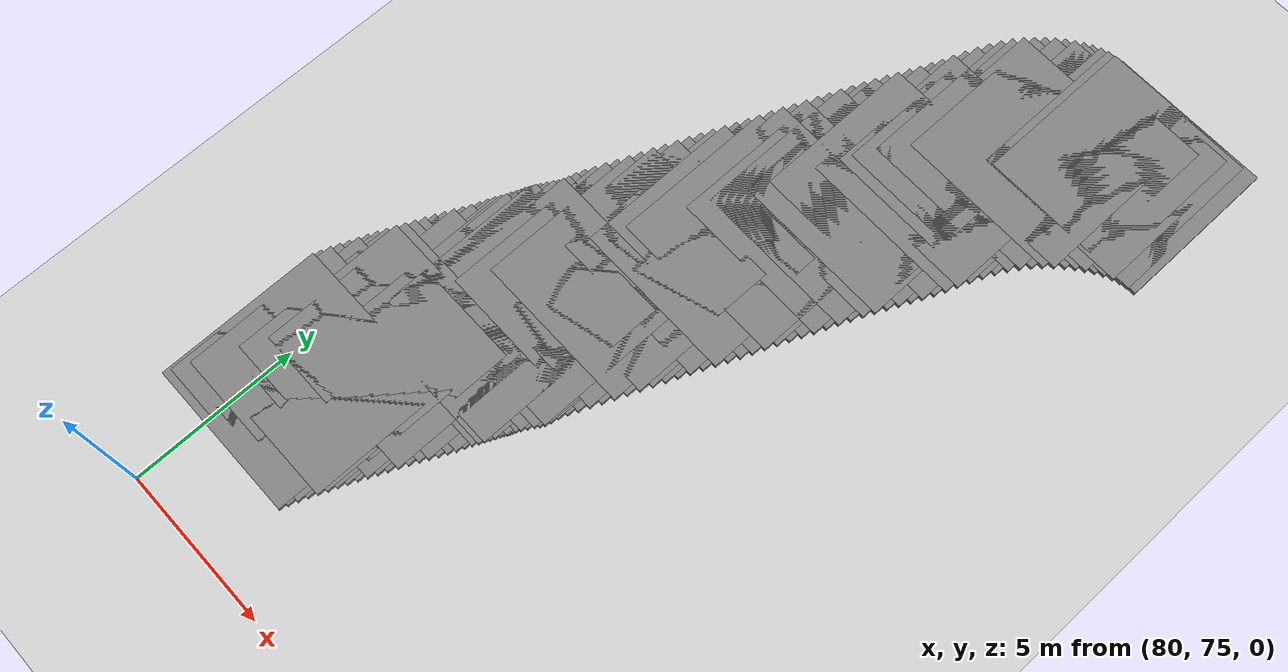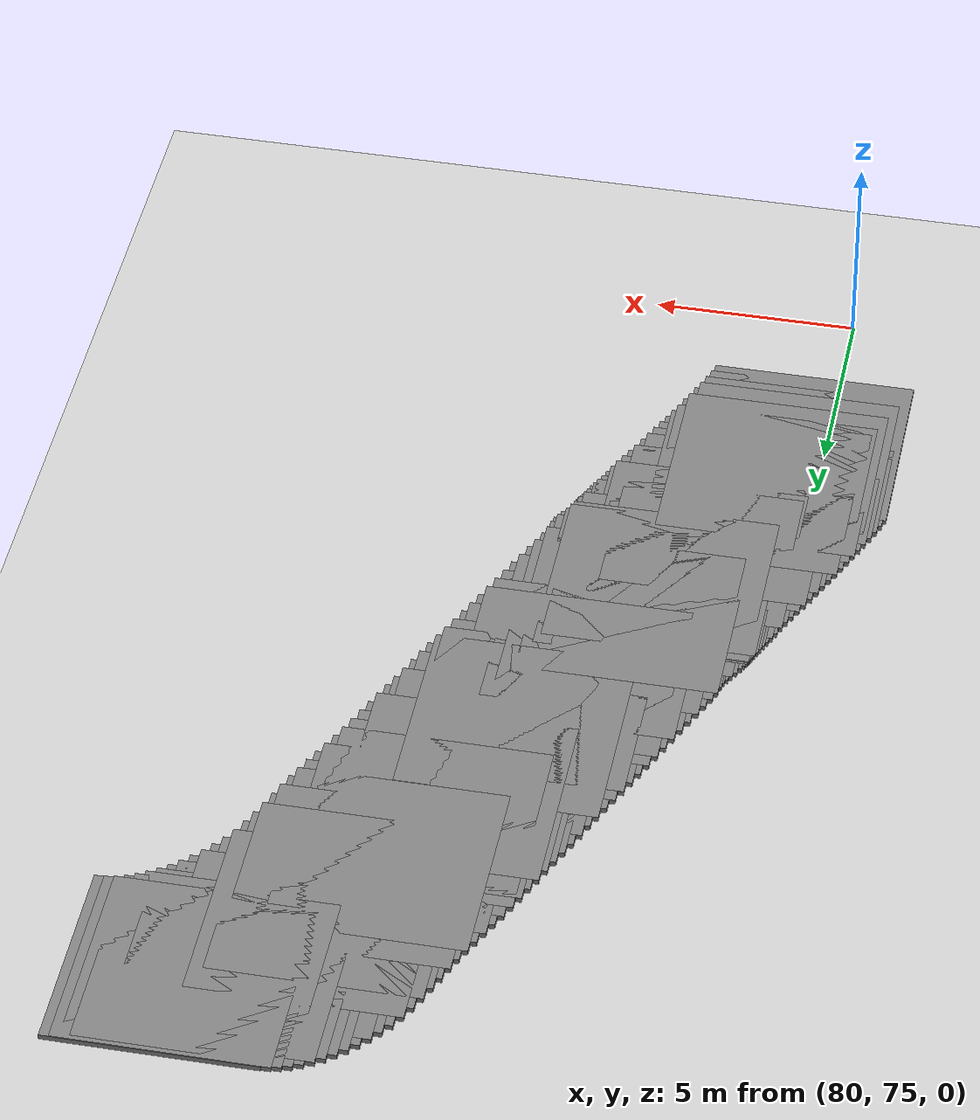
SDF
<sdf version="1.6">
 <world name="default">
  <include><uri>model://sun</uri></include>
  <include><uri>model://ground_plane</uri></include>
  <model name="road_segment_90">
   <static>true</static>
   <link name="link">
    <visual name="visual">
     <geometry><box><size>5.0 5.0 0.2</size></box></geometry>
     <material><ambient>0.5 0.5 0.5 1</ambient><diffuse>0.5 0.5 0.5 1</diffuse></material>
     <pose>91.52750333164111 100.0 0.0 0 0 0</pose>
    </visual>
    <collision name="collision">
     <geometry><box><size>5.0 5.0 0.2</size></box></geometry>
     <pose>91.52750333164111 100.0 0.0 0 0 0</pose>
    </collision>
   </link>
  </model>
  <model name="road_segment_91">
   <static>true</static>
   <link name="link">
    <visual name="visual">
     <geometry><box><size>5.0 5.0 0.2</size></box></geometry>
     <material><ambient>0.5 0.5 0.5 1</ambient><diffuse>0.5 0.5 0.5 1</diffuse></material>
     <pose>91.30393823810849 99.98161314047123 0.0 0 0 0</pose>
    </visual>
    <collision name="collision">
     <geometry><box><size>5.0 5.0 0.2</size></box></geometry>
     <pose>91.30393823810849 99.98161314047123 0.0 0 0 0</pose>
    </collision>
   </link>
  </model>
  <model name="road_segment_92">
   <static>true</static>
   <link name="link">
    <visual name="visual">
     <geometry><box><size>5.0 5.0 0.2</size></box></geometry>
     <material><ambient>0.5 0.5 0.5 1</ambient><diffuse>0.5 0.5 0.5 1</diffuse></material>
     <pose>91.07922430034874 99.94075345264079 0.0 0 0 0</pose>
    </visual>
    <collision name="collision">
     <geometry><box><size>5.0 5.0 0.2</size></box></geometry>
     <pose>91.07922430034874 99.94075345264079 0.0 0 0 0</pose>
    </collision>
   </link>
  </model>
  <model name="road_segment_93">
   <static>true</static>
   <link name="link">
    <visual name="visual">
     <geometry><box><size>5.0 5.0 0.2</size></box></geometry>
     <material><ambient>0.5 0.5 0.5 1</ambient><diffuse>0.5 0.5 0.5 1</diffuse></material>
     <pose>90.85474013142787 99.8712919833276 0.0 0 0 0</pose>
    </visual>
    <collision name="collision">
     <geometry><box><size>5.0 5.0 0.2</size></box></geometry>
     <pose>90.85474013142787 99.8712919833276 0.0 0 0 0</pose>
    </collision>
   </link>
  </model>
  <model name="road_segment_94">
   <static>true</static>
   <link name="link">
    <visual name="visual">
     <geometry><box><size>5.0 5.0 0.2</size></box></geometry>
     <material><ambient>0.5 0.5 0.5 1</ambient><diffuse>0.5 0.5 0.5 1</diffuse></material>
     <pose>90.63094526905635 99.76995995750318 0.0 0 0 0</pose>
    </visual>
    <collision name="collision">
     <geometry><box><size>5.0 5.0 0.2</size></box></geometry>
     <pose>90.63094526905635 99.76995995750318 0.0 0 0 0</pose>
    </collision>
   </link>
  </model>
  <model name="road_segment_95">
   <static>true</static>
   <link name="link">
    <visual name="visual">
     <geometry><box><size>5.0 5.0 0.2</size></box></geometry>
     <material><ambient>0.5 0.5 0.5 1</ambient><diffuse>0.5 0.5 0.5 1</diffuse></material>
     <pose>90.41174578372392 99.64697229712878 0.0 0 0 0</pose>
    </visual>
    <collision name="collision">
     <geometry><box><size>5.0 5.0 0.2</size></box></geometry>
     <pose>90.41174578372392 99.64697229712878 0.0 0 0 0</pose>
    </collision>
   </link>
  </model>
  <model name="road_segment_96">
   <static>true</static>
   <link name="link">
    <visual name="visual">
     <geometry><box><size>5.0 5.0 0.2</size></box></geometry>
     <material><ambient>0.5 0.5 0.5 1</ambient><diffuse>0.5 0.5 0.5 1</diffuse></material>
     <pose>90.19185699184214 99.50723216474347 0.0 0 0 0</pose>
    </visual>
    <collision name="collision">
     <geometry><box><size>5.0 5.0 0.2</size></box></geometry>
     <pose>90.19185699184214 99.50723216474347 0.0 0 0 0</pose>
    </collision>
   </link>
  </model>
  <model name="road_segment_97">
   <static>true</static>
   <link name="link">
    <visual name="visual">
     <geometry><box><size>5.0 5.0 0.2</size></box></geometry>
     <material><ambient>0.5 0.5 0.5 1</ambient><diffuse>0.5 0.5 0.5 1</diffuse></material>
     <pose>89.97449565735145 99.35073956034724 0.0 0 0 0</pose>
    </visual>
    <collision name="collision">
     <geometry><box><size>5.0 5.0 0.2</size></box></geometry>
     <pose>89.97449565735145 99.35073956034724 0.0 0 0 0</pose>
    </collision>
   </link>
  </model>
  <model name="road_segment_98">
   <static>true</static>
   <link name="link">
    <visual name="visual">
     <geometry><box><size>5.0 5.0 0.2</size></box></geometry>
     <material><ambient>0.5 0.5 0.5 1</ambient><diffuse>0.5 0.5 0.5 1</diffuse></material>
     <pose>89.76104039335053 99.17013974013148 0.0 0 0 0</pose>
    </visual>
    <collision name="collision">
     <geometry><box><size>5.0 5.0 0.2</size></box></geometry>
     <pose>89.76104039335053 99.17013974013148 0.0 0 0 0</pose>
    </collision>
   </link>
  </model>
  <model name="road_segment_99">
   <static>true</static>
   <link name="link">
    <visual name="visual">
     <geometry><box><size>5.0 5.0 0.2</size></box></geometry>
     <material><ambient>0.5 0.5 0.5 1</ambient><diffuse>0.5 0.5 0.5 1</diffuse></material>
     <pose>89.5510316621289 98.96870147911741 0.0 0 0 0</pose>
    </visual>
    <collision name="collision">
     <geometry><box><size>5.0 5.0 0.2</size></box></geometry>
     <pose>89.5510316621289 98.96870147911741 0.0 0 0 0</pose>
    </collision>
   </link>
  </model>
  <model name="road_segment_100">
   <static>true</static>
   <link name="link">
    <visual name="visual">
     <geometry><box><size>5.0 5.0 0.2</size></box></geometry>
     <material><ambient>0.5 0.5 0.5 1</ambient><diffuse>0.5 0.5 0.5 1</diffuse></material>
     <pose>89.34309085058793 98.75091934297554 0.0 0 0 0</pose>
    </visual>
    <collision name="collision">
     <geometry><box><size>5.0 5.0 0.2</size></box></geometry>
     <pose>89.34309085058793 98.75091934297554 0.0 0 0 0</pose>
    </collision>
   </link>
  </model>
  <model name="road_segment_101">
   <static>true</static>
   <link name="link">
    <visual name="visual">
     <geometry><box><size>5.0 5.0 0.2</size></box></geometry>
     <material><ambient>0.5 0.5 0.5 1</ambient><diffuse>0.5 0.5 0.5 1</diffuse></material>
     <pose>89.14709801938776 98.51679333169857 0.0 0 0 0</pose>
    </visual>
    <collision name="collision">
     <geometry><box><size>5.0 5.0 0.2</size></box></geometry>
     <pose>89.14709801938776 98.51679333169857 0.0 0 0 0</pose>
    </collision>
   </link>
  </model>
  <model name="road_segment_102">
   <static>true</static>
   <link name="link">
    <visual name="visual">
     <geometry><box><size>5.0 5.0 0.2</size></box></geometry>
     <material><ambient>0.5 0.5 0.5 1</ambient><diffuse>0.5 0.5 0.5 1</diffuse></material>
     <pose>88.95455172096689 98.26060308898853 0.0 0 0 0</pose>
    </visual>
    <collision name="collision">
     <geometry><box><size>5.0 5.0 0.2</size></box></geometry>
     <pose>88.95455172096689 98.26060308898853 0.0 0 0 0</pose>
    </collision>
   </link>
  </model>
  <model name="road_segment_103">
   <static>true</static>
   <link name="link">
    <visual name="visual">
     <geometry><box><size>5.0 5.0 0.2</size></box></geometry>
     <material><ambient>0.5 0.5 0.5 1</ambient><diffuse>0.5 0.5 0.5 1</diffuse></material>
     <pose>88.77487247827506 97.97540246791989 0.0 0 0 0</pose>
    </visual>
    <collision name="collision">
     <geometry><box><size>5.0 5.0 0.2</size></box></geometry>
     <pose>88.77487247827506 97.97540246791989 0.0 0 0 0</pose>
    </collision>
   </link>
  </model>
  <model name="road_segment_104">
   <static>true</static>
   <link name="link">
    <visual name="visual">
     <geometry><box><size>5.0 5.0 0.2</size></box></geometry>
     <material><ambient>0.5 0.5 0.5 1</ambient><diffuse>0.5 0.5 0.5 1</diffuse></material>
     <pose>88.61380451264375 97.66323445288636 0.0 0 0 0</pose>
    </visual>
    <collision name="collision">
     <geometry><box><size>5.0 5.0 0.2</size></box></geometry>
     <pose>88.61380451264375 97.66323445288636 0.0 0 0 0</pose>
    </collision>
   </link>
  </model>
  <model name="road_segment_105">
   <static>true</static>
   <link name="link">
    <visual name="visual">
     <geometry><box><size>5.0 5.0 0.2</size></box></geometry>
     <material><ambient>0.5 0.5 0.5 1</ambient><diffuse>0.5 0.5 0.5 1</diffuse></material>
     <pose>88.46330591425459 97.33472256271776 0.0 0 0 0</pose>
    </visual>
    <collision name="collision">
     <geometry><box><size>5.0 5.0 0.2</size></box></geometry>
     <pose>88.46330591425459 97.33472256271776 0.0 0 0 0</pose>
    </collision>
   </link>
  </model>
  <model name="road_segment_106">
   <static>true</static>
   <link name="link">
    <visual name="visual">
     <geometry><box><size>5.0 5.0 0.2</size></box></geometry>
     <material><ambient>0.5 0.5 0.5 1</ambient><diffuse>0.5 0.5 0.5 1</diffuse></material>
     <pose>88.31855153713163 97.0000817193753 0.0 0 0 0</pose>
    </visual>
    <collision name="collision">
     <geometry><box><size>5.0 5.0 0.2</size></box></geometry>
     <pose>88.31855153713163 97.0000817193753 0.0 0 0 0</pose>
    </collision>
   </link>
  </model>
  <model name="road_segment_107">
   <static>true</static>
   <link name="link">
    <visual name="visual">
     <geometry><box><size>5.0 5.0 0.2</size></box></geometry>
     <material><ambient>0.5 0.5 0.5 1</ambient><diffuse>0.5 0.5 0.5 1</diffuse></material>
     <pose>88.18505583383278 96.66298929475607 0.0 0 0 0</pose>
    </visual>
    <collision name="collision">
     <geometry><box><size>5.0 5.0 0.2</size></box></geometry>
     <pose>88.18505583383278 96.66298929475607 0.0 0 0 0</pose>
    </collision>
   </link>
  </model>
  <model name="road_segment_108">
   <static>true</static>
   <link name="link">
    <visual name="visual">
     <geometry><box><size>5.0 5.0 0.2</size></box></geometry>
     <material><ambient>0.5 0.5 0.5 1</ambient><diffuse>0.5 0.5 0.5 1</diffuse></material>
     <pose>88.05615550754038 96.33243442020103 0.0 0 0 0</pose>
    </visual>
    <collision name="collision">
     <geometry><box><size>5.0 5.0 0.2</size></box></geometry>
     <pose>88.05615550754038 96.33243442020103 0.0 0 0 0</pose>
    </collision>
   </link>
  </model>
  <model name="road_segment_109">
   <static>true</static>
   <link name="link">
    <visual name="visual">
     <geometry><box><size>5.0 5.0 0.2</size></box></geometry>
     <material><ambient>0.5 0.5 0.5 1</ambient><diffuse>0.5 0.5 0.5 1</diffuse></material>
     <pose>87.92564679931041 96.02925553648672 0.0 0 0 0</pose>
    </visual>
    <collision name="collision">
     <geometry><box><size>5.0 5.0 0.2</size></box></geometry>
     <pose>87.92564679931041 96.02925553648672 0.0 0 0 0</pose>
    </collision>
   </link>
  </model>
  <model name="road_segment_110">
   <static>true</static>
   <link name="link">
    <visual name="visual">
     <geometry><box><size>5.0 5.0 0.2</size></box></geometry>
     <material><ambient>0.5 0.5 0.5 1</ambient><diffuse>0.5 0.5 0.5 1</diffuse></material>
     <pose>87.7868664123905 95.72811963716609 0.0 0 0 0</pose>
    </visual>
    <collision name="collision">
     <geometry><box><size>5.0 5.0 0.2</size></box></geometry>
     <pose>87.7868664123905 95.72811963716609 0.0 0 0 0</pose>
    </collision>
   </link>
  </model>
  <model name="road_segment_111">
   <static>true</static>
   <link name="link">
    <visual name="visual">
     <geometry><box><size>5.0 5.0 0.2</size></box></geometry>
     <material><ambient>0.5 0.5 0.5 1</ambient><diffuse>0.5 0.5 0.5 1</diffuse></material>
     <pose>87.64417995494817 95.42820952847299 0.0 0 0 0</pose>
    </visual>
    <collision name="collision">
     <geometry><box><size>5.0 5.0 0.2</size></box></geometry>
     <pose>87.64417995494817 95.42820952847299 0.0 0 0 0</pose>
    </collision>
   </link>
  </model>
  <model name="road_segment_112">
   <static>true</static>
   <link name="link">
    <visual name="visual">
     <geometry><box><size>5.0 5.0 0.2</size></box></geometry>
     <material><ambient>0.5 0.5 0.5 1</ambient><diffuse>0.5 0.5 0.5 1</diffuse></material>
     <pose>87.49896604014744 95.124213451007 0.0 0 0 0</pose>
    </visual>
    <collision name="collision">
     <geometry><box><size>5.0 5.0 0.2</size></box></geometry>
     <pose>87.49896604014744 95.124213451007 0.0 0 0 0</pose>
    </collision>
   </link>
  </model>
  <model name="road_segment_113">
   <static>true</static>
   <link name="link">
    <visual name="visual">
     <geometry><box><size>5.0 5.0 0.2</size></box></geometry>
     <material><ambient>0.5 0.5 0.5 1</ambient><diffuse>0.5 0.5 0.5 1</diffuse></material>
     <pose>87.3509948991167 94.82226035792745 0.0 0 0 0</pose>
    </visual>
    <collision name="collision">
     <geometry><box><size>5.0 5.0 0.2</size></box></geometry>
     <pose>87.3509948991167 94.82226035792745 0.0 0 0 0</pose>
    </collision>
   </link>
  </model>
  <model name="road_segment_114">
   <static>true</static>
   <link name="link">
    <visual name="visual">
     <geometry><box><size>5.0 5.0 0.2</size></box></geometry>
     <material><ambient>0.5 0.5 0.5 1</ambient><diffuse>0.5 0.5 0.5 1</diffuse></material>
     <pose>87.20486190892773 94.52071586173099 0.0 0 0 0</pose>
    </visual>
    <collision name="collision">
     <geometry><box><size>5.0 5.0 0.2</size></box></geometry>
     <pose>87.20486190892773 94.52071586173099 0.0 0 0 0</pose>
    </collision>
   </link>
  </model>
  <model name="road_segment_115">
   <static>true</static>
   <link name="link">
    <visual name="visual">
     <geometry><box><size>5.0 5.0 0.2</size></box></geometry>
     <material><ambient>0.5 0.5 0.5 1</ambient><diffuse>0.5 0.5 0.5 1</diffuse></material>
     <pose>87.06171591377498 94.20977363732497 0.0 0 0 0</pose>
    </visual>
    <collision name="collision">
     <geometry><box><size>5.0 5.0 0.2</size></box></geometry>
     <pose>87.06171591377498 94.20977363732497 0.0 0 0 0</pose>
    </collision>
   </link>
  </model>
  <model name="road_segment_116">
   <static>true</static>
   <link name="link">
    <visual name="visual">
     <geometry><box><size>5.0 5.0 0.2</size></box></geometry>
     <material><ambient>0.5 0.5 0.5 1</ambient><diffuse>0.5 0.5 0.5 1</diffuse></material>
     <pose>86.92132714488486 93.89147666911761 0.0 0 0 0</pose>
    </visual>
    <collision name="collision">
     <geometry><box><size>5.0 5.0 0.2</size></box></geometry>
     <pose>86.92132714488486 93.89147666911761 0.0 0 0 0</pose>
    </collision>
   </link>
  </model>
  <model name="road_segment_117">
   <static>true</static>
   <link name="link">
    <visual name="visual">
     <geometry><box><size>5.0 5.0 0.2</size></box></geometry>
     <material><ambient>0.5 0.5 0.5 1</ambient><diffuse>0.5 0.5 0.5 1</diffuse></material>
     <pose>86.78323606451427 93.57563128217251 0.0 0 0 0</pose>
    </visual>
    <collision name="collision">
     <geometry><box><size>5.0 5.0 0.2</size></box></geometry>
     <pose>86.78323606451427 93.57563128217251 0.0 0 0 0</pose>
    </collision>
   </link>
  </model>
  <model name="road_segment_118">
   <static>true</static>
   <link name="link">
    <visual name="visual">
     <geometry><box><size>5.0 5.0 0.2</size></box></geometry>
     <material><ambient>0.5 0.5 0.5 1</ambient><diffuse>0.5 0.5 0.5 1</diffuse></material>
     <pose>86.64951059234389 93.25774291084097 0.0 0 0 0</pose>
    </visual>
    <collision name="collision">
     <geometry><box><size>5.0 5.0 0.2</size></box></geometry>
     <pose>86.64951059234389 93.25774291084097 0.0 0 0 0</pose>
    </collision>
   </link>
  </model>
  <model name="road_segment_119">
   <static>true</static>
   <link name="link">
    <visual name="visual">
     <geometry><box><size>5.0 5.0 0.2</size></box></geometry>
     <material><ambient>0.5 0.5 0.5 1</ambient><diffuse>0.5 0.5 0.5 1</diffuse></material>
     <pose>86.51417673820329 92.93781155511574 0.0 0 0 0</pose>
    </visual>
    <collision name="collision">
     <geometry><box><size>5.0 5.0 0.2</size></box></geometry>
     <pose>86.51417673820329 92.93781155511574 0.0 0 0 0</pose>
    </collision>
   </link>
  </model>
  <model name="road_segment_120">
   <static>true</static>
   <link name="link">
    <visual name="visual">
     <geometry><box><size>5.0 5.0 0.2</size></box></geometry>
     <material><ambient>0.5 0.5 0.5 1</ambient><diffuse>0.5 0.5 0.5 1</diffuse></material>
     <pose>86.37378796928051 92.62155757129482 0.0 0 0 0</pose>
    </visual>
    <collision name="collision">
     <geometry><box><size>5.0 5.0 0.2</size></box></geometry>
     <pose>86.37378796928051 92.62155757129482 0.0 0 0 0</pose>
    </collision>
   </link>
  </model>
  <model name="road_segment_121">
   <static>true</static>
   <link name="link">
    <visual name="visual">
     <geometry><box><size>5.0 5.0 0.2</size></box></geometry>
     <material><ambient>0.5 0.5 0.5 1</ambient><diffuse>0.5 0.5 0.5 1</diffuse></material>
     <pose>86.23064197416042 92.30612078123282 0.0 0 0 0</pose>
    </visual>
    <collision name="collision">
     <geometry><box><size>5.0 5.0 0.2</size></box></geometry>
     <pose>86.23064197416042 92.30612078123282 0.0 0 0 0</pose>
    </collision>
   </link>
  </model>
  <model name="road_segment_122">
   <static>true</static>
   <link name="link">
    <visual name="visual">
     <geometry><box><size>5.0 5.0 0.2</size></box></geometry>
     <material><ambient>0.5 0.5 0.5 1</ambient><diffuse>0.5 0.5 0.5 1</diffuse></material>
     <pose>86.08933412984942 91.99068399117083 0.0 0 0 0</pose>
    </visual>
    <collision name="collision">
     <geometry><box><size>5.0 5.0 0.2</size></box></geometry>
     <pose>86.08933412984942 91.99068399117083 0.0 0 0 0</pose>
    </collision>
   </link>
  </model>
  <model name="road_segment_123">
   <static>true</static>
   <link name="link">
    <visual name="visual">
     <geometry><box><size>5.0 5.0 0.2</size></box></geometry>
     <material><ambient>0.5 0.5 0.5 1</ambient><diffuse>0.5 0.5 0.5 1</diffuse></material>
     <pose>85.95514911996858 91.66830105417606 0.0 0 0 0</pose>
    </visual>
    <collision name="collision">
     <geometry><box><size>5.0 5.0 0.2</size></box></geometry>
     <pose>85.95514911996858 91.66830105417606 0.0 0 0 0</pose>
    </collision>
   </link>
  </model>
  <model name="road_segment_124">
   <static>true</static>
   <link name="link">
    <visual name="visual">
     <geometry><box><size>5.0 5.0 0.2</size></box></geometry>
     <material><ambient>0.5 0.5 0.5 1</ambient><diffuse>0.5 0.5 0.5 1</diffuse></material>
     <pose>85.82234272321908 91.34142355151806 0.0 0 0 0</pose>
    </visual>
    <collision name="collision">
     <geometry><box><size>5.0 5.0 0.2</size></box></geometry>
     <pose>85.82234272321908 91.34142355151806 0.0 0 0 0</pose>
    </collision>
   </link>
  </model>
  <model name="road_segment_125">
   <static>true</static>
   <link name="link">
    <visual name="visual">
     <geometry><box><size>5.0 5.0 0.2</size></box></geometry>
     <material><ambient>0.5 0.5 0.5 1</ambient><diffuse>0.5 0.5 0.5 1</diffuse></material>
     <pose>85.68976609530846 91.026803955215 0.0 0 0 0</pose>
    </visual>
    <collision name="collision">
     <geometry><box><size>5.0 5.0 0.2</size></box></geometry>
     <pose>85.68976609530846 91.026803955215 0.0 0 0 0</pose>
    </collision>
   </link>
  </model>
  <model name="road_segment_126">
   <static>true</static>
   <link name="link">
    <visual name="visual">
     <geometry><box><size>5.0 5.0 0.2</size></box></geometry>
     <material><ambient>0.5 0.5 0.5 1</ambient><diffuse>0.5 0.5 0.5 1</diffuse></material>
     <pose>85.55144524606634 90.71545313393314 0.0 0 0 0</pose>
    </visual>
    <collision name="collision">
     <geometry><box><size>5.0 5.0 0.2</size></box></geometry>
     <pose>85.55144524606634 90.71545313393314 0.0 0 0 0</pose>
    </collision>
   </link>
  </model>
  <model name="road_segment_127">
   <static>true</static>
   <link name="link">
    <visual name="visual">
     <geometry><box><size>5.0 5.0 0.2</size></box></geometry>
     <material><ambient>0.5 0.5 0.5 1</ambient><diffuse>0.5 0.5 0.5 1</diffuse></material>
     <pose>85.40898855749558 90.40451090953438 0.0 0 0 0</pose>
    </visual>
    <collision name="collision">
     <geometry><box><size>5.0 5.0 0.2</size></box></geometry>
     <pose>85.40898855749558 90.40451090953438 0.0 0 0 0</pose>
    </collision>
   </link>
  </model>
  <model name="road_segment_128">
   <static>true</static>
   <link name="link">
    <visual name="visual">
     <geometry><box><size>5.0 5.0 0.2</size></box></geometry>
     <material><ambient>0.5 0.5 0.5 1</ambient><diffuse>0.5 0.5 0.5 1</diffuse></material>
     <pose>85.2663021000859 90.08989131323132 0.0 0 0 0</pose>
    </visual>
    <collision name="collision">
     <geometry><box><size>5.0 5.0 0.2</size></box></geometry>
     <pose>85.2663021000859 90.08989131323132 0.0 0 0 0</pose>
    </collision>
   </link>
  </model>
  <model name="road_segment_129">
   <static>true</static>
   <link name="link">
    <visual name="visual">
     <geometry><box><size>5.0 5.0 0.2</size></box></geometry>
     <material><ambient>0.5 0.5 0.5 1</ambient><diffuse>0.5 0.5 0.5 1</diffuse></material>
     <pose>85.12384541151513 89.77404592628623 0.0 0 0 0</pose>
    </visual>
    <collision name="collision">
     <geometry><box><size>5.0 5.0 0.2</size></box></geometry>
     <pose>85.12384541151513 89.77404592628623 0.0 0 0 0</pose>
    </collision>
   </link>
  </model>
  <model name="road_segment_130">
   <static>true</static>
   <link name="link">
    <visual name="visual">
     <geometry><box><size>5.0 5.0 0.2</size></box></geometry>
     <material><ambient>0.5 0.5 0.5 1</ambient><diffuse>0.5 0.5 0.5 1</diffuse></material>
     <pose>84.98506502456257 89.45983492685899 0.0 0 0 0</pose>
    </visual>
    <collision name="collision">
     <geometry><box><size>5.0 5.0 0.2</size></box></geometry>
     <pose>84.98506502456257 89.45983492685899 0.0 0 0 0</pose>
    </collision>
   </link>
  </model>
  <model name="road_segment_131">
   <static>true</static>
   <link name="link">
    <visual name="visual">
     <geometry><box><size>5.0 5.0 0.2</size></box></geometry>
     <material><ambient>0.5 0.5 0.5 1</ambient><diffuse>0.5 0.5 0.5 1</diffuse></material>
     <pose>84.84766325077398 89.14112936176853 0.0 0 0 0</pose>
    </visual>
    <collision name="collision">
     <geometry><box><size>5.0 5.0 0.2</size></box></geometry>
     <pose>84.84766325077398 89.14112936176853 0.0 0 0 0</pose>
    </collision>
   </link>
  </model>
  <model name="road_segment_132">
   <static>true</static>
   <link name="link">
    <visual name="visual">
     <geometry><box><size>5.0 5.0 0.2</size></box></geometry>
     <material><ambient>0.5 0.5 0.5 1</ambient><diffuse>0.5 0.5 0.5 1</diffuse></material>
     <pose>84.70704471301231 88.81792923101483 0.0 0 0 0</pose>
    </visual>
    <collision name="collision">
     <geometry><box><size>5.0 5.0 0.2</size></box></geometry>
     <pose>84.70704471301231 88.81792923101483 0.0 0 0 0</pose>
    </collision>
   </link>
  </model>
  <model name="road_segment_133">
   <static>true</static>
   <link name="link">
    <visual name="visual">
     <geometry><box><size>5.0 5.0 0.2</size></box></geometry>
     <material><ambient>0.5 0.5 0.5 1</ambient><diffuse>0.5 0.5 0.5 1</diffuse></material>
     <pose>84.56527733099087 88.49391190650945 0.0 0 0 0</pose>
    </visual>
    <collision name="collision">
     <geometry><box><size>5.0 5.0 0.2</size></box></geometry>
     <pose>84.56527733099087 88.49391190650945 0.0 0 0 0</pose>
    </collision>
   </link>
  </model>
  <model name="road_segment_134">
   <static>true</static>
   <link name="link">
    <visual name="visual">
     <geometry><box><size>5.0 5.0 0.2</size></box></geometry>
     <material><ambient>0.5 0.5 0.5 1</ambient><diffuse>0.5 0.5 0.5 1</diffuse></material>
     <pose>84.42787555716963 88.17071177576302 0.0 0 0 0</pose>
    </visual>
    <collision name="collision">
     <geometry><box><size>5.0 5.0 0.2</size></box></geometry>
     <pose>84.42787555716963 88.17071177576302 0.0 0 0 0</pose>
    </collision>
   </link>
  </model>
  <model name="road_segment_135">
   <static>true</static>
   <link name="link">
    <visual name="visual">
     <geometry><box><size>5.0 5.0 0.2</size></box></geometry>
     <material><ambient>0.5 0.5 0.5 1</ambient><diffuse>0.5 0.5 0.5 1</diffuse></material>
     <pose>84.2918523964797 87.85118901691362 0.0 0 0 0</pose>
    </visual>
    <collision name="collision">
     <geometry><box><size>5.0 5.0 0.2</size></box></geometry>
     <pose>84.2918523964797 87.85118901691362 0.0 0 0 0</pose>
    </collision>
   </link>
  </model>
  <model name="road_segment_136">
   <static>true</static>
   <link name="link">
    <visual name="visual">
     <geometry><box><size>5.0 5.0 0.2</size></box></geometry>
     <material><ambient>0.5 0.5 0.5 1</ambient><diffuse>0.5 0.5 0.5 1</diffuse></material>
     <pose>84.15284224068824 87.5390210018801 0.0 0 0 0</pose>
    </visual>
    <collision name="collision">
     <geometry><box><size>5.0 5.0 0.2</size></box></geometry>
     <pose>84.15284224068824 87.5390210018801 0.0 0 0 0</pose>
    </collision>
   </link>
  </model>
  <model name="road_segment_137">
   <static>true</static>
   <link name="link">
    <visual name="visual">
     <geometry><box><size>5.0 5.0 0.2</size></box></geometry>
     <material><ambient>0.5 0.5 0.5 1</ambient><diffuse>0.5 0.5 0.5 1</diffuse></material>
     <pose>84.01658931115942 87.23461632753101 0.0 0 0 0</pose>
    </visual>
    <collision name="collision">
     <geometry><box><size>5.0 5.0 0.2</size></box></geometry>
     <pose>84.01658931115942 87.23461632753101 0.0 0 0 0</pose>
    </collision>
   </link>
  </model>
  <model name="road_segment_138">
   <static>true</static>
   <link name="link">
    <visual name="visual">
     <geometry><box><size>5.0 5.0 0.2</size></box></geometry>
     <material><ambient>0.5 0.5 0.5 1</ambient><diffuse>0.5 0.5 0.5 1</diffuse></material>
     <pose>83.88929736683721 86.94818991582761 0.0 0 0 0</pose>
    </visual>
    <collision name="collision">
     <geometry><box><size>5.0 5.0 0.2</size></box></geometry>
     <pose>83.88929736683721 86.94818991582761 0.0 0 0 0</pose>
    </collision>
   </link>
  </model>
  <model name="road_segment_139">
   <static>true</static>
   <link name="link">
    <visual name="visual">
     <geometry><box><size>5.0 5.0 0.2</size></box></geometry>
     <material><ambient>0.5 0.5 0.5 1</ambient><diffuse>0.5 0.5 0.5 1</diffuse></material>
     <pose>83.77234502091827 86.68382773555729 0.0 0 0 0</pose>
    </visual>
    <collision name="collision">
     <geometry><box><size>5.0 5.0 0.2</size></box></geometry>
     <pose>83.77234502091827 86.68382773555729 0.0 0 0 0</pose>
    </collision>
   </link>
  </model>
  <model name="road_segment_140">
   <static>true</static>
   <link name="link">
    <visual name="visual">
     <geometry><box><size>5.0 5.0 0.2</size></box></geometry>
     <material><ambient>0.5 0.5 0.5 1</ambient><diffuse>0.5 0.5 0.5 1</diffuse></material>
     <pose>83.68457331923666 86.4411211898297 0.0 0 0 0</pose>
    </visual>
    <collision name="collision">
     <geometry><box><size>5.0 5.0 0.2</size></box></geometry>
     <pose>83.68457331923666 86.4411211898297 0.0 0 0 0</pose>
    </collision>
   </link>
  </model>
  <model name="road_segment_141">
   <static>true</static>
   <link name="link">
    <visual name="visual">
     <geometry><box><size>5.0 5.0 0.2</size></box></geometry>
     <material><ambient>0.5 0.5 0.5 1</ambient><diffuse>0.5 0.5 0.5 1</diffuse></material>
     <pose>83.63218602086702 86.23028520062059 0.0 0 0 0</pose>
    </visual>
    <collision name="collision">
     <geometry><box><size>5.0 5.0 0.2</size></box></geometry>
     <pose>83.63218602086702 86.23028520062059 0.0 0 0 0</pose>
    </collision>
   </link>
  </model>
  <model name="road_segment_142">
   <static>true</static>
   <link name="link">
    <visual name="visual">
     <geometry><box><size>5.0 5.0 0.2</size></box></geometry>
     <material><ambient>0.5 0.5 0.5 1</ambient><diffuse>0.5 0.5 0.5 1</diffuse></material>
     <pose>83.58669178805602 86.07052382119589 0.0 0 0 0</pose>
    </visual>
    <collision name="collision">
     <geometry><box><size>5.0 5.0 0.2</size></box></geometry>
     <pose>83.58669178805602 86.07052382119589 0.0 0 0 0</pose>
    </collision>
   </link>
  </model>
  <model name="road_segment_143">
   <static>true</static>
   <link name="link">
    <visual name="visual">
     <geometry><box><size>5.0 5.0 0.2</size></box></geometry>
     <material><ambient>0.5 0.5 0.5 1</ambient><diffuse>0.5 0.5 0.5 1</diffuse></material>
     <pose>83.52235650934558 85.94712756394564 0.0 0 0 0</pose>
    </visual>
    <collision name="collision">
     <geometry><box><size>5.0 5.0 0.2</size></box></geometry>
     <pose>83.52235650934558 85.94712756394564 0.0 0 0 0</pose>
    </collision>
   </link>
  </model>
  <model name="road_segment_144">
   <static>true</static>
   <link name="link">
    <visual name="visual">
     <geometry><box><size>5.0 5.0 0.2</size></box></geometry>
     <material><ambient>0.5 0.5 0.5 1</ambient><diffuse>0.5 0.5 0.5 1</diffuse></material>
     <pose>83.44239694867615 85.82659148484078 0.0 0 0 0</pose>
    </visual>
    <collision name="collision">
     <geometry><box><size>5.0 5.0 0.2</size></box></geometry>
     <pose>83.44239694867615 85.82659148484078 0.0 0 0 0</pose>
    </collision>
   </link>
  </model>
  <model name="road_segment_145">
   <static>true</static>
   <link name="link">
    <visual name="visual">
     <geometry><box><size>5.0 5.0 0.2</size></box></geometry>
     <material><ambient>0.5 0.5 0.5 1</ambient><diffuse>0.5 0.5 0.5 1</diffuse></material>
     <pose>83.35094894534369 85.67459344610052 0.0 0 0 0</pose>
    </visual>
    <collision name="collision">
     <geometry><box><size>5.0 5.0 0.2</size></box></geometry>
     <pose>83.35094894534369 85.67459344610052 0.0 0 0 0</pose>
    </collision>
   </link>
  </model>
  <model name="road_segment_146">
   <static>true</static>
   <link name="link">
    <visual name="visual">
     <geometry><box><size>5.0 5.0 0.2</size></box></geometry>
     <material><ambient>0.5 0.5 0.5 1</ambient><diffuse>0.5 0.5 0.5 1</diffuse></material>
     <pose>83.26846192728317 85.51973522922216 0.0 0 0 0</pose>
    </visual>
    <collision name="collision">
     <geometry><box><size>5.0 5.0 0.2</size></box></geometry>
     <pose>83.26846192728317 85.51973522922216 0.0 0 0 0</pose>
    </collision>
   </link>
  </model>
  <model name="road_segment_147">
   <static>true</static>
   <link name="link">
    <visual name="visual">
     <geometry><box><size>5.0 5.0 0.2</size></box></geometry>
     <material><ambient>0.5 0.5 0.5 1</ambient><diffuse>0.5 0.5 0.5 1</diffuse></material>
     <pose>83.20734341251315 85.40042494075206 0.0 0 0 0</pose>
    </visual>
    <collision name="collision">
     <geometry><box><size>5.0 5.0 0.2</size></box></geometry>
     <pose>83.20734341251315 85.40042494075206 0.0 0 0 0</pose>
    </collision>
   </link>
  </model>
  <model name="road_segment_148">
   <static>true</static>
   <link name="link">
    <visual name="visual">
     <geometry><box><size>5.0 5.0 0.2</size></box></geometry>
     <material><ambient>0.5 0.5 0.5 1</ambient><diffuse>0.5 0.5 0.5 1</diffuse></material>
     <pose>83.17012085842475 85.32483451826502 0.0 0 0 0</pose>
    </visual>
    <collision name="collision">
     <geometry><box><size>5.0 5.0 0.2</size></box></geometry>
     <pose>83.17012085842475 85.32483451826502 0.0 0 0 0</pose>
    </collision>
   </link>
  </model>
  <model name="road_segment_149">
   <static>true</static>
   <link name="link">
    <visual name="visual">
     <geometry><box><size>5.0 5.0 0.2</size></box></geometry>
     <material><ambient>0.5 0.5 0.5 1</ambient><diffuse>0.5 0.5 0.5 1</diffuse></material>
     <pose>83.15426680759418 85.27089973032072 0.0 0 0 0</pose>
    </visual>
    <collision name="collision">
     <geometry><box><size>5.0 5.0 0.2</size></box></geometry>
     <pose>83.15426680759418 85.27089973032072 0.0 0 0 0</pose>
    </collision>
   </link>
  </model>
  <model name="road_segment_150">
   <static>true</static>
   <link name="link">
    <visual name="visual">
     <geometry><box><size>5.0 5.0 0.2</size></box></geometry>
     <material><ambient>0.5 0.5 0.5 1</ambient><diffuse>0.5 0.5 0.5 1</diffuse></material>
     <pose>83.14323790267427 85.23453460815352 0.0 0 0 0</pose>
    </visual>
    <collision name="collision">
     <geometry><box><size>5.0 5.0 0.2</size></box></geometry>
     <pose>83.14323790267427 85.23453460815352 0.0 0 0 0</pose>
    </collision>
   </link>
  </model>
  <model name="road_segment_151">
   <static>true</static>
   <link name="link">
    <visual name="visual">
     <geometry><box><size>5.0 5.0 0.2</size></box></geometry>
     <material><ambient>0.5 0.5 0.5 1</ambient><diffuse>0.5 0.5 0.5 1</diffuse></material>
     <pose>83.12876246494238 85.2063414235466 0.0 0 0 0</pose>
    </visual>
    <collision name="collision">
     <geometry><box><size>5.0 5.0 0.2</size></box></geometry>
     <pose>83.12876246494238 85.2063414235466 0.0 0 0 0</pose>
    </collision>
   </link>
  </model>
  <model name="road_segment_152">
   <static>true</static>
   <link name="link">
    <visual name="visual">
     <geometry><box><size>5.0 5.0 0.2</size></box></geometry>
     <material><ambient>0.5 0.5 0.5 1</ambient><diffuse>0.5 0.5 0.5 1</diffuse></material>
     <pose>83.10555581084277 85.17855683582279 0.0 0 0 0</pose>
    </visual>
    <collision name="collision">
     <geometry><box><size>5.0 5.0 0.2</size></box></geometry>
     <pose>83.10555581084277 85.17855683582279 0.0 0 0 0</pose>
    </collision>
   </link>
  </model>
  <model name="road_segment_153">
   <static>true</static>
   <link name="link">
    <visual name="visual">
     <geometry><box><size>5.0 5.0 0.2</size></box></geometry>
     <material><ambient>0.5 0.5 0.5 1</ambient><diffuse>0.5 0.5 0.5 1</diffuse></material>
     <pose>83.07109048295167 85.11481572280759 0.0 0 0 0</pose>
    </visual>
    <collision name="collision">
     <geometry><box><size>5.0 5.0 0.2</size></box></geometry>
     <pose>83.07109048295167 85.11481572280759 0.0 0 0 0</pose>
    </collision>
   </link>
  </model>
  <model name="road_segment_154">
   <static>true</static>
   <link name="link">
    <visual name="visual">
     <geometry><box><size>5.0 5.0 0.2</size></box></geometry>
     <material><ambient>0.5 0.5 0.5 1</ambient><diffuse>0.5 0.5 0.5 1</diffuse></material>
     <pose>83.02973208950198 85.01511808449378 0.0 0 0 0</pose>
    </visual>
    <collision name="collision">
     <geometry><box><size>5.0 5.0 0.2</size></box></geometry>
     <pose>83.02973208950198 85.01511808449378 0.0 0 0 0</pose>
    </collision>
   </link>
  </model>
  <model name="road_segment_155">
   <static>true</static>
   <link name="link">
    <visual name="visual">
     <geometry><box><size>5.0 5.0 0.2</size></box></geometry>
     <material><ambient>0.5 0.5 0.5 1</ambient><diffuse>0.5 0.5 0.5 1</diffuse></material>
     <pose>82.97895317310255 84.894990602272 0.0 0 0 0</pose>
    </visual>
    <collision name="collision">
     <geometry><box><size>5.0 5.0 0.2</size></box></geometry>
     <pose>82.97895317310255 84.894990602272 0.0 0 0 0</pose>
    </collision>
   </link>
  </model>
  <model name="road_segment_156">
   <static>true</static>
   <link name="link">
    <visual name="visual">
     <geometry><box><size>5.0 5.0 0.2</size></box></geometry>
     <material><ambient>0.5 0.5 0.5 1</ambient><diffuse>0.5 0.5 0.5 1</diffuse></material>
     <pose>82.9233491107925 84.76464819808899 0.0 0 0 0</pose>
    </visual>
    <collision name="collision">
     <geometry><box><size>5.0 5.0 0.2</size></box></geometry>
     <pose>82.9233491107925 84.76464819808899 0.0 0 0 0</pose>
    </collision>
   </link>
  </model>
  <model name="road_segment_157">
   <static>true</static>
   <link name="link">
    <visual name="visual">
     <geometry><box><size>5.0 5.0 0.2</size></box></geometry>
     <material><ambient>0.5 0.5 0.5 1</ambient><diffuse>0.5 0.5 0.5 1</diffuse></material>
     <pose>82.86360920912115 84.62858543760798 0.0 0 0 0</pose>
    </visual>
    <collision name="collision">
     <geometry><box><size>5.0 5.0 0.2</size></box></geometry>
     <pose>82.86360920912115 84.62858543760798 0.0 0 0 0</pose>
    </collision>
   </link>
  </model>
  <model name="road_segment_158">
   <static>true</static>
   <link name="link">
    <visual name="visual">
     <geometry><box><size>5.0 5.0 0.2</size></box></geometry>
     <material><ambient>0.5 0.5 0.5 1</ambient><diffuse>0.5 0.5 0.5 1</diffuse></material>
     <pose>82.7983548550225 84.49088828960912 0.0 0 0 0</pose>
    </visual>
    <collision name="collision">
     <geometry><box><size>5.0 5.0 0.2</size></box></geometry>
     <pose>82.7983548550225 84.49088828960912 0.0 0 0 0</pose>
    </collision>
   </link>
  </model>
  <model name="road_segment_159">
   <static>true</static>
   <link name="link">
    <visual name="visual">
     <geometry><box><size>5.0 5.0 0.2</size></box></geometry>
     <material><ambient>0.5 0.5 0.5 1</ambient><diffuse>0.5 0.5 0.5 1</diffuse></material>
     <pose>82.7183952943204 84.33807305711719 0.0 0 0 0</pose>
    </visual>
    <collision name="collision">
     <geometry><box><size>5.0 5.0 0.2</size></box></geometry>
     <pose>82.7183952943204 84.33807305711719 0.0 0 0 0</pose>
    </collision>
   </link>
  </model>
  <model name="road_segment_160">
   <static>true</static>
   <link name="link">
    <visual name="visual">
     <geometry><box><size>5.0 5.0 0.2</size></box></geometry>
     <material><ambient>0.5 0.5 0.5 1</ambient><diffuse>0.5 0.5 0.5 1</diffuse></material>
     <pose>82.63843573365097 84.1513442837276 0.0 0 0 0</pose>
    </visual>
    <collision name="collision">
     <geometry><box><size>5.0 5.0 0.2</size></box></geometry>
     <pose>82.63843573365097 84.1513442837276 0.0 0 0 0</pose>
    </collision>
   </link>
  </model>
  <model name="road_segment_161">
   <static>true</static>
   <link name="link">
    <visual name="visual">
     <geometry><box><size>5.0 5.0 0.2</size></box></geometry>
     <material><ambient>0.5 0.5 0.5 1</ambient><diffuse>0.5 0.5 0.5 1</diffuse></material>
     <pose>82.55663802213977 83.93928250387646 0.0 0 0 0</pose>
    </visual>
    <collision name="collision">
     <geometry><box><size>5.0 5.0 0.2</size></box></geometry>
     <pose>82.55663802213977 83.93928250387646 0.0 0 0 0</pose>
    </collision>
   </link>
  </model>
  <model name="road_segment_162">
   <static>true</static>
   <link name="link">
    <visual name="visual">
     <geometry><box><size>5.0 5.0 0.2</size></box></geometry>
     <material><ambient>0.5 0.5 0.5 1</ambient><diffuse>0.5 0.5 0.5 1</diffuse></material>
     <pose>82.46174348606064 83.72517773963888 0.0 0 0 0</pose>
    </visual>
    <collision name="collision">
     <geometry><box><size>5.0 5.0 0.2</size></box></geometry>
     <pose>82.46174348606064 83.72517773963888 0.0 0 0 0</pose>
    </collision>
   </link>
  </model>
  <model name="road_segment_163">
   <static>true</static>
   <link name="link">
    <visual name="visual">
     <geometry><box><size>5.0 5.0 0.2</size></box></geometry>
     <material><ambient>0.5 0.5 0.5 1</ambient><diffuse>0.5 0.5 0.5 1</diffuse></material>
     <pose>82.35444143189765 83.50821279724866 0.0 0 0 0</pose>
    </visual>
    <collision name="collision">
     <geometry><box><size>5.0 5.0 0.2</size></box></geometry>
     <pose>82.35444143189765 83.50821279724866 0.0 0 0 0</pose>
    </collision>
   </link>
  </model>
  <model name="road_segment_164">
   <static>true</static>
   <link name="link">
    <visual name="visual">
     <geometry><box><size>5.0 5.0 0.2</size></box></geometry>
     <material><ambient>0.5 0.5 0.5 1</ambient><diffuse>0.5 0.5 0.5 1</diffuse></material>
     <pose>82.240935618758 83.29043066110677 0.0 0 0 0</pose>
    </visual>
    <collision name="collision">
     <geometry><box><size>5.0 5.0 0.2</size></box></geometry>
     <pose>82.240935618758 83.29043066110677 0.0 0 0 0</pose>
    </collision>
   </link>
  </model>
  <model name="road_segment_165">
   <static>true</static>
   <link name="link">
    <visual name="visual">
     <geometry><box><size>5.0 5.0 0.2</size></box></geometry>
     <material><ambient>0.5 0.5 0.5 1</ambient><diffuse>0.5 0.5 0.5 1</diffuse></material>
     <pose>82.1272000367468 83.05548745607089 0.0 0 0 0</pose>
    </visual>
    <collision name="collision">
     <geometry><box><size>5.0 5.0 0.2</size></box></geometry>
     <pose>82.1272000367468 83.05548745607089 0.0 0 0 0</pose>
    </collision>
   </link>
  </model>
  <model name="road_segment_166">
   <static>true</static>
   <link name="link">
    <visual name="visual">
     <geometry><box><size>5.0 5.0 0.2</size></box></geometry>
     <material><ambient>0.5 0.5 0.5 1</ambient><diffuse>0.5 0.5 0.5 1</diffuse></material>
     <pose>82.01070722850564 82.80992073220517 0.0 0 0 0</pose>
    </visual>
    <collision name="collision">
     <geometry><box><size>5.0 5.0 0.2</size></box></geometry>
     <pose>82.01070722850564 82.80992073220517 0.0 0 0 0</pose>
    </collision>
   </link>
  </model>
  <model name="road_segment_167">
   <static>true</static>
   <link name="link">
    <visual name="visual">
     <geometry><box><size>5.0 5.0 0.2</size></box></geometry>
     <material><ambient>0.5 0.5 0.5 1</ambient><diffuse>0.5 0.5 0.5 1</diffuse></material>
     <pose>81.89559303339578 82.55904224891731 0.0 0 0 0</pose>
    </visual>
    <collision name="collision">
     <geometry><box><size>5.0 5.0 0.2</size></box></geometry>
     <pose>81.89559303339578 82.55904224891731 0.0 0 0 0</pose>
    </collision>
   </link>
  </model>
  <model name="road_segment_168">
   <static>true</static>
   <link name="link">
    <visual name="visual">
     <geometry><box><size>5.0 5.0 0.2</size></box></geometry>
     <material><ambient>0.5 0.5 0.5 1</ambient><diffuse>0.5 0.5 0.5 1</diffuse></material>
     <pose>81.7813979137068 82.31020675001587 0.0 0 0 0</pose>
    </visual>
    <collision name="collision">
     <geometry><box><size>5.0 5.0 0.2</size></box></geometry>
     <pose>81.7813979137068 82.31020675001587 0.0 0 0 0</pose>
    </collision>
   </link>
  </model>
  <model name="road_segment_169">
   <static>true</static>
   <link name="link">
    <visual name="visual">
     <geometry><box><size>5.0 5.0 0.2</size></box></geometry>
     <material><ambient>0.5 0.5 0.5 1</ambient><diffuse>0.5 0.5 0.5 1</diffuse></material>
     <pose>81.6678921005345 82.06790880117137 0.0 0 0 0</pose>
    </visual>
    <collision name="collision">
     <geometry><box><size>5.0 5.0 0.2</size></box></geometry>
     <pose>81.6678921005345 82.06790880117137 0.0 0 0 0</pose>
    </collision>
   </link>
  </model>
  <model name="road_segment_170">
   <static>true</static>
   <link name="link">
    <visual name="visual">
     <geometry><box><size>5.0 5.0 0.2</size></box></geometry>
     <material><ambient>0.5 0.5 0.5 1</ambient><diffuse>0.5 0.5 0.5 1</diffuse></material>
     <pose>81.55760305133528 81.8305140148732 0.0 0 0 0</pose>
    </visual>
    <collision name="collision">
     <geometry><box><size>5.0 5.0 0.2</size></box></geometry>
     <pose>81.55760305133528 81.8305140148732 0.0 0 0 0</pose>
    </collision>
   </link>
  </model>
  <model name="road_segment_171">
   <static>true</static>
   <link name="link">
    <visual name="visual">
     <geometry><box><size>5.0 5.0 0.2</size></box></geometry>
     <material><ambient>0.5 0.5 0.5 1</ambient><diffuse>0.5 0.5 0.5 1</diffuse></material>
     <pose>81.44823307752428 81.59148484105717 0.0 0 0 0</pose>
    </visual>
    <collision name="collision">
     <geometry><box><size>5.0 5.0 0.2</size></box></geometry>
     <pose>81.44823307752428 81.59148484105717 0.0 0 0 0</pose>
    </collision>
   </link>
  </model>
  <model name="road_segment_172">
   <static>true</static>
   <link name="link">
    <visual name="visual">
     <geometry><box><size>5.0 5.0 0.2</size></box></geometry>
     <material><ambient>0.5 0.5 0.5 1</ambient><diffuse>0.5 0.5 0.5 1</diffuse></material>
     <pose>81.3395524102626 81.34510092342526 0.0 0 0 0</pose>
    </visual>
    <collision name="collision">
     <geometry><box><size>5.0 5.0 0.2</size></box></geometry>
     <pose>81.3395524102626 81.34510092342526 0.0 0 0 0</pose>
    </collision>
   </link>
  </model>
  <model name="road_segment_173">
   <static>true</static>
   <link name="link">
    <visual name="visual">
     <geometry><box><size>5.0 5.0 0.2</size></box></geometry>
     <material><ambient>0.5 0.5 0.5 1</ambient><diffuse>0.5 0.5 0.5 1</diffuse></material>
     <pose>81.23661596433244 81.10239437770494 0.0 0 0 0</pose>
    </visual>
    <collision name="collision">
     <geometry><box><size>5.0 5.0 0.2</size></box></geometry>
     <pose>81.23661596433244 81.10239437770494 0.0 0 0 0</pose>
    </collision>
   </link>
  </model>
  <model name="road_segment_174">
   <static>true</static>
   <link name="link">
    <visual name="visual">
     <geometry><box><size>5.0 5.0 0.2</size></box></geometry>
     <material><ambient>0.5 0.5 0.5 1</ambient><diffuse>0.5 0.5 0.5 1</diffuse></material>
     <pose>81.13666651347116 80.8654081882826 0.0 0 0 0</pose>
    </visual>
    <collision name="collision">
     <geometry><box><size>5.0 5.0 0.2</size></box></geometry>
     <pose>81.13666651347116 80.8654081882826 0.0 0 0 0</pose>
    </collision>
   </link>
  </model>
  <model name="road_segment_175">
   <static>true</static>
   <link name="link">
    <visual name="visual">
     <geometry><box><size>5.0 5.0 0.2</size></box></geometry>
     <material><ambient>0.5 0.5 0.5 1</ambient><diffuse>0.5 0.5 0.5 1</diffuse></material>
     <pose>81.0355682183501 80.62515322382454 0.0 0 0 0</pose>
    </visual>
    <collision name="collision">
     <geometry><box><size>5.0 5.0 0.2</size></box></geometry>
     <pose>81.0355682183501 80.62515322382454 0.0 0 0 0</pose>
    </collision>
   </link>
  </model>
  <model name="road_segment_176">
   <static>true</static>
   <link name="link">
    <visual name="visual">
     <geometry><box><size>5.0 5.0 0.2</size></box></geometry>
     <material><ambient>0.5 0.5 0.5 1</ambient><diffuse>0.5 0.5 0.5 1</diffuse></material>
     <pose>80.93148292816016 80.38775843752637 0.0 0 0 0</pose>
    </visual>
    <collision name="collision">
     <geometry><box><size>5.0 5.0 0.2</size></box></geometry>
     <pose>80.93148292816016 80.38775843752637 0.0 0 0 0</pose>
    </collision>
   </link>
  </model>
  <model name="road_segment_177">
   <static>true</static>
   <link name="link">
    <visual name="visual">
     <geometry><box><size>5.0 5.0 0.2</size></box></geometry>
     <material><ambient>0.5 0.5 0.5 1</ambient><diffuse>0.5 0.5 0.5 1</diffuse></material>
     <pose>80.8329120904302 80.14382610116401 0.0 0 0 0</pose>
    </visual>
    <collision name="collision">
     <geometry><box><size>5.0 5.0 0.2</size></box></geometry>
     <pose>80.8329120904302 80.14382610116401 0.0 0 0 0</pose>
    </collision>
   </link>
  </model>
  <model name="road_segment_178">
   <static>true</static>
   <link name="link">
    <visual name="visual">
     <geometry><box><size>5.0 5.0 0.2</size></box></geometry>
     <material><ambient>0.5 0.5 0.5 1</ambient><diffuse>0.5 0.5 0.5 1</diffuse></material>
     <pose>80.74353200681104 79.89744218353937 0.0 0 0 0</pose>
    </visual>
    <collision name="collision">
     <geometry><box><size>5.0 5.0 0.2</size></box></geometry>
     <pose>80.74353200681104 79.89744218353937 0.0 0 0 0</pose>
    </collision>
   </link>
  </model>
  <model name="road_segment_179">
   <static>true</static>
   <link name="link">
    <visual name="visual">
     <geometry><box><size>5.0 5.0 0.2</size></box></geometry>
     <material><ambient>0.5 0.5 0.5 1</ambient><diffuse>0.5 0.5 0.5 1</diffuse></material>
     <pose>80.6690868985689 79.67475688485841 0.0 0 0 0</pose>
    </visual>
    <collision name="collision">
     <geometry><box><size>5.0 5.0 0.2</size></box></geometry>
     <pose>80.6690868985689 79.67475688485841 0.0 0 0 0</pose>
    </collision>
   </link>
  </model>
 </world>
</sdf>
